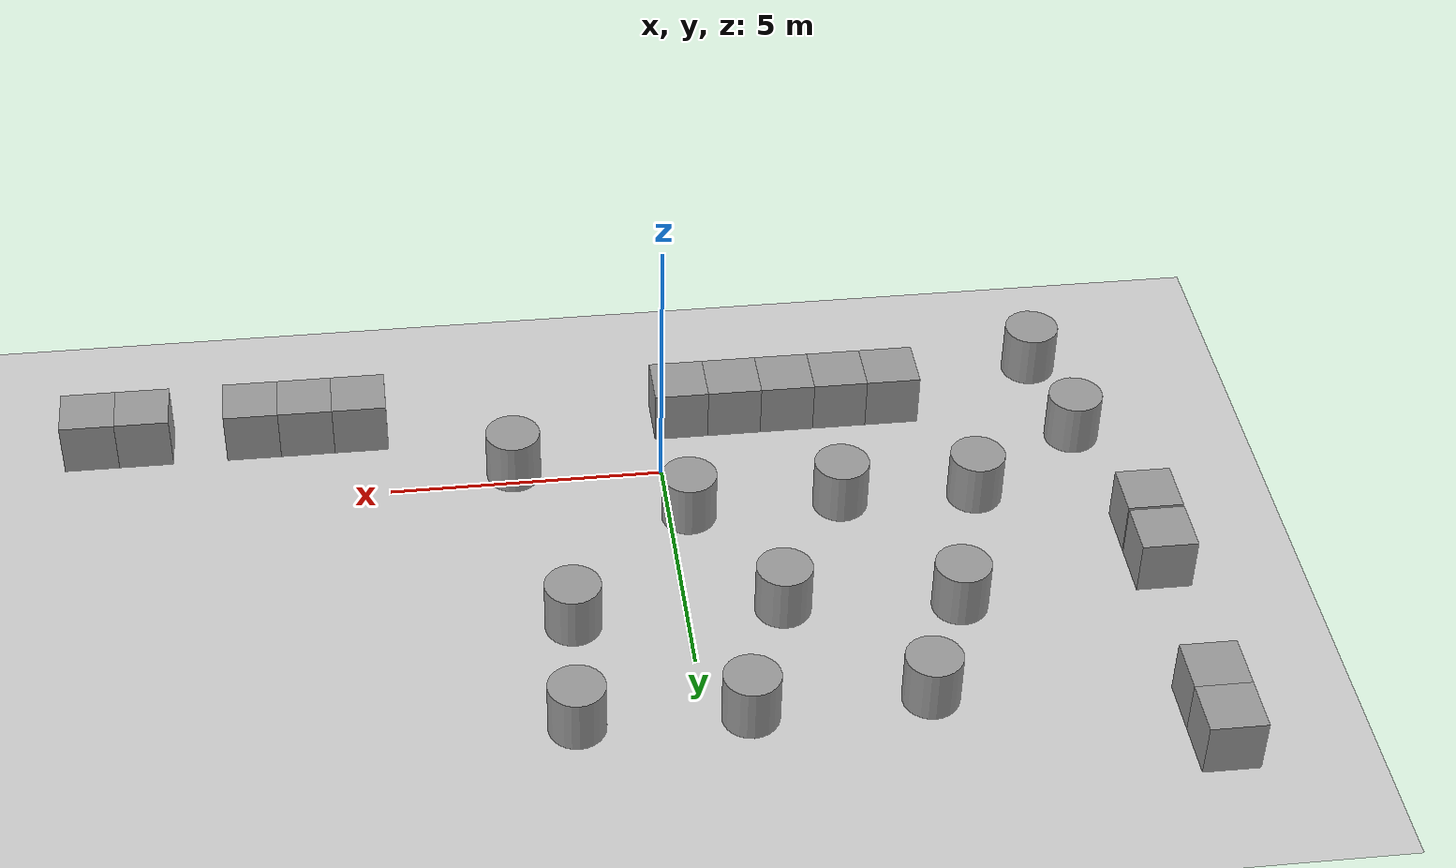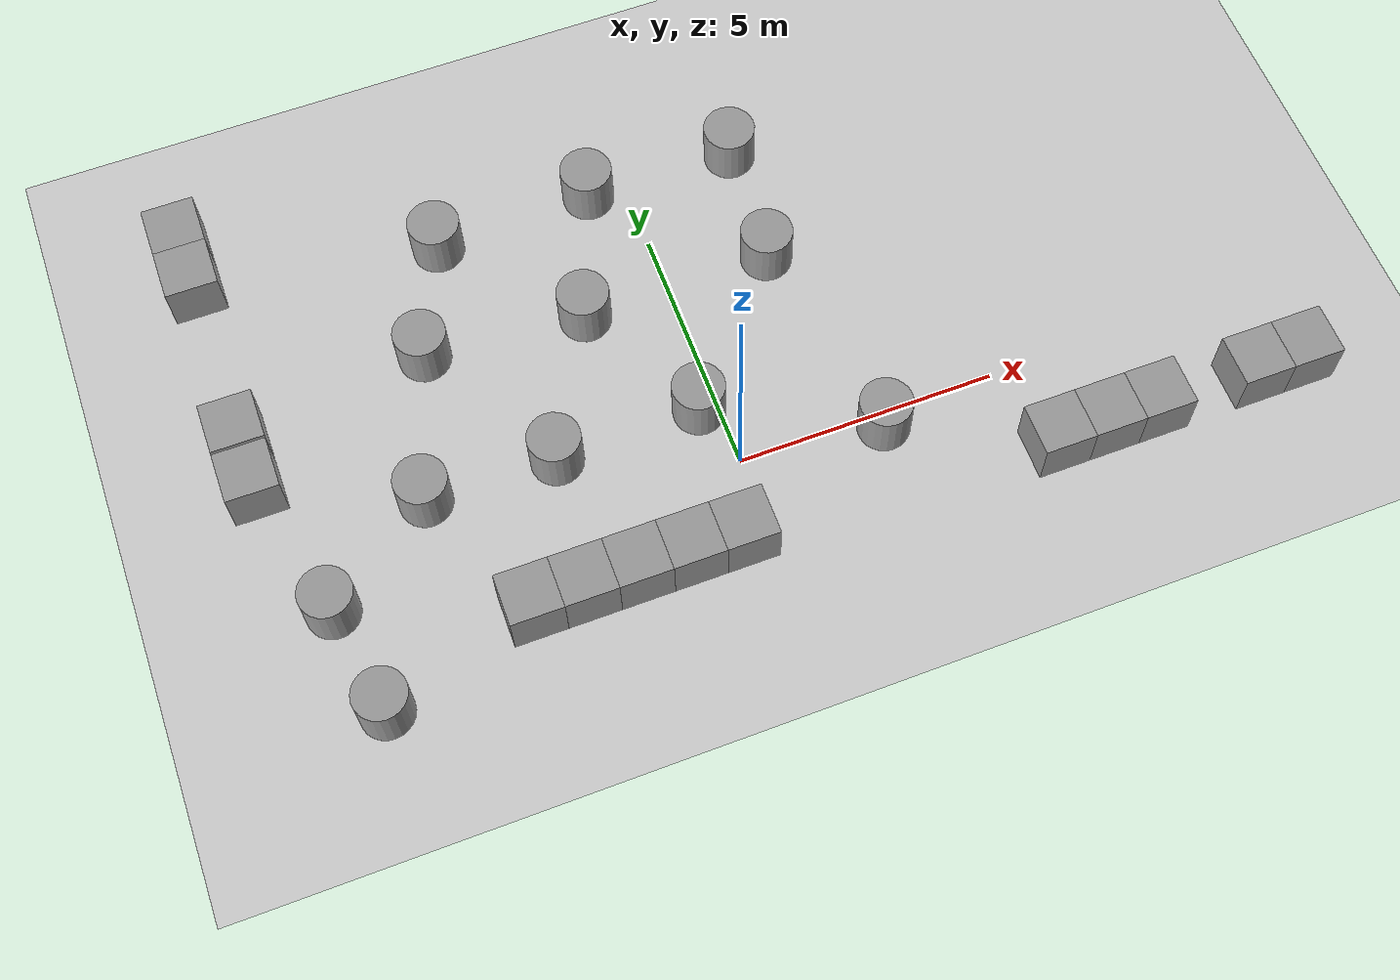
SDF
<sdf version="1.7">
 <world name="default">
  <model name="ground_plane">
   <static>1</static>
   <link name="link">
    <collision name="collision">
     <geometry><plane><normal>0 0 1</normal><size>100 100</size></plane></geometry>
     <surface><friction><ode><mu>100</mu><mu2>50</mu2></ode></friction></surface>
    </collision>
    <visual name="visual">
     <cast_shadows>0</cast_shadows>
     <geometry><plane><normal>0 0 1</normal><size>100 100</size></plane></geometry>
     <material>
      <script><uri>file://media/materials/scripts/gazebo.material</uri><name>Gazebo/Grey</name></script>
     </material>
    </visual>
   </link>
  </model>
  <model name="Simple_model">
   <link name="link_10">
    <inertial>
     <mass>100</mass>
     <inertia><ixx>16.6667</ixx><ixy>0</ixy><ixz>0</ixz><iyy>16.6667</iyy><iyz>0</iyz><izz>16.6667</izz></inertia>
    </inertial>
    <pose>-2.5 -3.5 0.5 0 -0 0</pose>
    <visual name="visual">
     <geometry><box><size>1 1 1</size></box></geometry>
     <material>
      <lighting>1</lighting>
      <script><uri>file://media/materials/scripts/gazebo.material</uri><name>Gazebo/Grey</name></script>
      <shader type="pixel"><normal_map>__default__</normal_map></shader>
      <ambient>0.3 0.3 0.3 1</ambient>
      <diffuse>0.7 0.7 0.7 1</diffuse>
      <specular>0.01 0.01 0.01 1</specular>
      <emissive>0 0 0 1</emissive>
     </material>
    </visual>
    <collision name="collision">
     <geometry><box><size>1 1 1</size></box></geometry>
     <surface>
      <friction>
       <ode><mu>1</mu><mu2>1</mu2><fdir1>0 0 0</fdir1><slip1>0</slip1><slip2>0</slip2></ode>
       <torsional>
        <coefficient>1</coefficient>
        <patch_radius>0</patch_radius>
        <surface_radius>0</surface_radius>
        <use_patch_radius>1</use_patch_radius>
        <ode><slip>0</slip></ode>
       </torsional>
      </friction>
      <bounce><restitution_coefficient>0</restitution_coefficient><threshold>1e+06</threshold></bounce>
      <contact>
       <collide_without_contact>0</collide_without_contact>
       <collide_without_contact_bitmask>1</collide_without_contact_bitmask>
       <collide_bitmask>1</collide_bitmask>
       <ode>
        <soft_cfm>0</soft_cfm>
        <soft_erp>0.2</soft_erp>
        <kp>1e+13</kp>
        <kd>1</kd>
        <max_vel>0.01</max_vel>
        <min_depth>0</min_depth>
       </ode>
       <bullet>
        <split_impulse>1</split_impulse>
        <split_impulse_penetration_threshold>-0.01</split_impulse_penetration_threshold>
        <soft_cfm>0</soft_cfm>
        <soft_erp>0.2</soft_erp>
        <kp>1e+13</kp>
        <kd>1</kd>
       </bullet>
      </contact>
     </surface>
    </collision>
   </link>
   <link name="link_11">
    <inertial>
     <mass>100</mass>
     <inertia><ixx>16.6667</ixx><ixy>0</ixy><ixz>0</ixz><iyy>16.6667</iyy><iyz>0</iyz><izz>16.6667</izz></inertia>
    </inertial>
    <pose>-3.5 -3.5 0.5 0 -0 0</pose>
    <visual name="visual">
     <geometry><box><size>1 1 1</size></box></geometry>
     <material>
      <lighting>1</lighting>
      <script><uri>file://media/materials/scripts/gazebo.material</uri><name>Gazebo/Grey</name></script>
      <shader type="pixel"><normal_map>__default__</normal_map></shader>
      <ambient>0.3 0.3 0.3 1</ambient>
      <diffuse>0.7 0.7 0.7 1</diffuse>
      <specular>0.01 0.01 0.01 1</specular>
      <emissive>0 0 0 1</emissive>
     </material>
    </visual>
    <collision name="collision">
     <geometry><box><size>1 1 1</size></box></geometry>
     <surface>
      <friction>
       <ode><mu>1</mu><mu2>1</mu2><fdir1>0 0 0</fdir1><slip1>0</slip1><slip2>0</slip2></ode>
       <torsional>
        <coefficient>1</coefficient>
        <patch_radius>0</patch_radius>
        <surface_radius>0</surface_radius>
        <use_patch_radius>1</use_patch_radius>
        <ode><slip>0</slip></ode>
       </torsional>
      </friction>
      <bounce><restitution_coefficient>0</restitution_coefficient><threshold>1e+06</threshold></bounce>
      <contact>
       <collide_without_contact>0</collide_without_contact>
       <collide_without_contact_bitmask>1</collide_without_contact_bitmask>
       <collide_bitmask>1</collide_bitmask>
       <ode>
        <soft_cfm>0</soft_cfm>
        <soft_erp>0.2</soft_erp>
        <kp>1e+13</kp>
        <kd>1</kd>
        <max_vel>0.01</max_vel>
        <min_depth>0</min_depth>
       </ode>
       <bullet>
        <split_impulse>1</split_impulse>
        <split_impulse_penetration_threshold>-0.01</split_impulse_penetration_threshold>
        <soft_cfm>0</soft_cfm>
        <soft_erp>0.2</soft_erp>
        <kp>1e+13</kp>
        <kd>1</kd>
       </bullet>
      </contact>
     </surface>
    </collision>
   </link>
   <link name="link_12">
    <inertial>
     <mass>100</mass>
     <inertia><ixx>16.6667</ixx><ixy>0</ixy><ixz>0</ixz><iyy>16.6667</iyy><iyz>0</iyz><izz>16.6667</izz></inertia>
    </inertial>
    <pose>-4.5 -3.5 0.5 0 -0 0</pose>
    <visual name="visual">
     <geometry><box><size>1 1 1</size></box></geometry>
     <material>
      <lighting>1</lighting>
      <script><uri>file://media/materials/scripts/gazebo.material</uri><name>Gazebo/Grey</name></script>
      <shader type="pixel"><normal_map>__default__</normal_map></shader>
      <ambient>0.3 0.3 0.3 1</ambient>
      <diffuse>0.7 0.7 0.7 1</diffuse>
      <specular>0.01 0.01 0.01 1</specular>
      <emissive>0 0 0 1</emissive>
     </material>
    </visual>
    <collision name="collision">
     <geometry><box><size>1 1 1</size></box></geometry>
     <surface>
      <friction>
       <ode><mu>1</mu><mu2>1</mu2><fdir1>0 0 0</fdir1><slip1>0</slip1><slip2>0</slip2></ode>
       <torsional>
        <coefficient>1</coefficient>
        <patch_radius>0</patch_radius>
        <surface_radius>0</surface_radius>
        <use_patch_radius>1</use_patch_radius>
        <ode><slip>0</slip></ode>
       </torsional>
      </friction>
      <bounce><restitution_coefficient>0</restitution_coefficient><threshold>1e+06</threshold></bounce>
      <contact>
       <collide_without_contact>0</collide_without_contact>
       <collide_without_contact_bitmask>1</collide_without_contact_bitmask>
       <collide_bitmask>1</collide_bitmask>
       <ode>
        <soft_cfm>0</soft_cfm>
        <soft_erp>0.2</soft_erp>
        <kp>1e+13</kp>
        <kd>1</kd>
        <max_vel>0.01</max_vel>
        <min_depth>0</min_depth>
       </ode>
       <bullet>
        <split_impulse>1</split_impulse>
        <split_impulse_penetration_threshold>-0.01</split_impulse_penetration_threshold>
        <soft_cfm>0</soft_cfm>
        <soft_erp>0.2</soft_erp>
        <kp>1e+13</kp>
        <kd>1</kd>
       </bullet>
      </contact>
     </surface>
    </collision>
   </link>
   <link name="link_13">
    <inertial>
     <mass>100</mass>
     <inertia><ixx>16.6667</ixx><ixy>0</ixy><ixz>0</ixz><iyy>16.6667</iyy><iyz>0</iyz><izz>16.6667</izz></inertia>
    </inertial>
    <pose>5.5 -3.75 0.5 0 -0 0</pose>
    <visual name="visual">
     <geometry><box><size>1 1 1</size></box></geometry>
     <material>
      <lighting>1</lighting>
      <script><uri>file://media/materials/scripts/gazebo.material</uri><name>Gazebo/Grey</name></script>
      <shader type="pixel"><normal_map>__default__</normal_map></shader>
      <ambient>0.3 0.3 0.3 1</ambient>
      <diffuse>0.7 0.7 0.7 1</diffuse>
      <specular>0.01 0.01 0.01 1</specular>
      <emissive>0 0 0 1</emissive>
     </material>
    </visual>
    <collision name="collision">
     <geometry><box><size>1 1 1</size></box></geometry>
     <surface>
      <friction>
       <ode><mu>1</mu><mu2>1</mu2><fdir1>0 0 0</fdir1><slip1>0</slip1><slip2>0</slip2></ode>
       <torsional>
        <coefficient>1</coefficient>
        <patch_radius>0</patch_radius>
        <surface_radius>0</surface_radius>
        <use_patch_radius>1</use_patch_radius>
        <ode><slip>0</slip></ode>
       </torsional>
      </friction>
      <bounce><restitution_coefficient>0</restitution_coefficient><threshold>1e+06</threshold></bounce>
      <contact>
       <collide_without_contact>0</collide_without_contact>
       <collide_without_contact_bitmask>1</collide_without_contact_bitmask>
       <collide_bitmask>1</collide_bitmask>
       <ode>
        <soft_cfm>0</soft_cfm>
        <soft_erp>0.2</soft_erp>
        <kp>1e+13</kp>
        <kd>1</kd>
        <max_vel>0.01</max_vel>
        <min_depth>0</min_depth>
       </ode>
       <bullet>
        <split_impulse>1</split_impulse>
        <split_impulse_penetration_threshold>-0.01</split_impulse_penetration_threshold>
        <soft_cfm>0</soft_cfm>
        <soft_erp>0.2</soft_erp>
        <kp>1e+13</kp>
        <kd>1</kd>
       </bullet>
      </contact>
     </surface>
    </collision>
   </link>
   <link name="link_13_clone">
    <inertial>
     <mass>100</mass>
     <inertia><ixx>16.6667</ixx><ixy>0</ixy><ixz>0</ixz><iyy>16.6667</iyy><iyz>0</iyz><izz>16.6667</izz></inertia>
    </inertial>
    <pose>6.5 -3.75 0.5 0 -0 0</pose>
    <visual name="visual">
     <geometry><box><size>1 1 1</size></box></geometry>
     <material>
      <lighting>1</lighting>
      <script><uri>file://media/materials/scripts/gazebo.material</uri><name>Gazebo/Grey</name></script>
      <shader type="pixel"><normal_map>__default__</normal_map></shader>
      <ambient>0.3 0.3 0.3 1</ambient>
      <diffuse>0.7 0.7 0.7 1</diffuse>
      <specular>0.01 0.01 0.01 1</specular>
      <emissive>0 0 0 1</emissive>
     </material>
    </visual>
    <collision name="collision">
     <geometry><box><size>1 1 1</size></box></geometry>
     <surface>
      <friction>
       <ode><mu>1</mu><mu2>1</mu2><fdir1>0 0 0</fdir1><slip1>0</slip1><slip2>0</slip2></ode>
       <torsional>
        <coefficient>1</coefficient>
        <patch_radius>0</patch_radius>
        <surface_radius>0</surface_radius>
        <use_patch_radius>1</use_patch_radius>
        <ode><slip>0</slip></ode>
       </torsional>
      </friction>
      <bounce><restitution_coefficient>0</restitution_coefficient><threshold>1e+06</threshold></bounce>
      <contact>
       <collide_without_contact>0</collide_without_contact>
       <collide_without_contact_bitmask>1</collide_without_contact_bitmask>
       <collide_bitmask>1</collide_bitmask>
       <ode>
        <soft_cfm>0</soft_cfm>
        <soft_erp>0.2</soft_erp>
        <kp>1e+13</kp>
        <kd>1</kd>
        <max_vel>0.01</max_vel>
        <min_depth>0</min_depth>
       </ode>
       <bullet>
        <split_impulse>1</split_impulse>
        <split_impulse_penetration_threshold>-0.01</split_impulse_penetration_threshold>
        <soft_cfm>0</soft_cfm>
        <soft_erp>0.2</soft_erp>
        <kp>1e+13</kp>
        <kd>1</kd>
       </bullet>
      </contact>
     </surface>
    </collision>
   </link>
   <link name="link_13_clone_0">
    <inertial>
     <mass>100</mass>
     <inertia><ixx>16.6667</ixx><ixy>0</ixy><ixz>0</ixz><iyy>16.6667</iyy><iyz>0</iyz><izz>16.6667</izz></inertia>
    </inertial>
    <pose>7.5 -3.75 0.5 0 -0 0</pose>
    <visual name="visual">
     <geometry><box><size>1 1 1</size></box></geometry>
     <material>
      <lighting>1</lighting>
      <script><uri>file://media/materials/scripts/gazebo.material</uri><name>Gazebo/Grey</name></script>
      <shader type="pixel"><normal_map>__default__</normal_map></shader>
      <ambient>0.3 0.3 0.3 1</ambient>
      <diffuse>0.7 0.7 0.7 1</diffuse>
      <specular>0.01 0.01 0.01 1</specular>
      <emissive>0 0 0 1</emissive>
     </material>
    </visual>
    <collision name="collision">
     <geometry><box><size>1 1 1</size></box></geometry>
     <surface>
      <friction>
       <ode><mu>1</mu><mu2>1</mu2><fdir1>0 0 0</fdir1><slip1>0</slip1><slip2>0</slip2></ode>
       <torsional>
        <coefficient>1</coefficient>
        <patch_radius>0</patch_radius>
        <surface_radius>0</surface_radius>
        <use_patch_radius>1</use_patch_radius>
        <ode><slip>0</slip></ode>
       </torsional>
      </friction>
      <bounce><restitution_coefficient>0</restitution_coefficient><threshold>1e+06</threshold></bounce>
      <contact>
       <collide_without_contact>0</collide_without_contact>
       <collide_without_contact_bitmask>1</collide_without_contact_bitmask>
       <collide_bitmask>1</collide_bitmask>
       <ode>
        <soft_cfm>0</soft_cfm>
        <soft_erp>0.2</soft_erp>
        <kp>1e+13</kp>
        <kd>1</kd>
        <max_vel>0.01</max_vel>
        <min_depth>0</min_depth>
       </ode>
       <bullet>
        <split_impulse>1</split_impulse>
        <split_impulse_penetration_threshold>-0.01</split_impulse_penetration_threshold>
        <soft_cfm>0</soft_cfm>
        <soft_erp>0.2</soft_erp>
        <kp>1e+13</kp>
        <kd>1</kd>
       </bullet>
      </contact>
     </surface>
    </collision>
   </link>
   <link name="link_13_clone_1">
    <inertial>
     <mass>100</mass>
     <inertia><ixx>16.6667</ixx><ixy>0</ixy><ixz>0</ixz><iyy>16.6667</iyy><iyz>0</iyz><izz>16.6667</izz></inertia>
    </inertial>
    <pose>9.5 -3.75 0.5 0 -0 0</pose>
    <visual name="visual">
     <geometry><box><size>1 1 1</size></box></geometry>
     <material>
      <lighting>1</lighting>
      <script><uri>file://media/materials/scripts/gazebo.material</uri><name>Gazebo/Grey</name></script>
      <shader type="pixel"><normal_map>__default__</normal_map></shader>
      <ambient>0.3 0.3 0.3 1</ambient>
      <diffuse>0.7 0.7 0.7 1</diffuse>
      <specular>0.01 0.01 0.01 1</specular>
      <emissive>0 0 0 1</emissive>
     </material>
    </visual>
    <collision name="collision">
     <geometry><box><size>1 1 1</size></box></geometry>
     <surface>
      <friction>
       <ode><mu>1</mu><mu2>1</mu2><fdir1>0 0 0</fdir1><slip1>0</slip1><slip2>0</slip2></ode>
       <torsional>
        <coefficient>1</coefficient>
        <patch_radius>0</patch_radius>
        <surface_radius>0</surface_radius>
        <use_patch_radius>1</use_patch_radius>
        <ode><slip>0</slip></ode>
       </torsional>
      </friction>
      <bounce><restitution_coefficient>0</restitution_coefficient><threshold>1e+06</threshold></bounce>
      <contact>
       <collide_without_contact>0</collide_without_contact>
       <collide_without_contact_bitmask>1</collide_without_contact_bitmask>
       <collide_bitmask>1</collide_bitmask>
       <ode>
        <soft_cfm>0</soft_cfm>
        <soft_erp>0.2</soft_erp>
        <kp>1e+13</kp>
        <kd>1</kd>
        <max_vel>0.01</max_vel>
        <min_depth>0</min_depth>
       </ode>
       <bullet>
        <split_impulse>1</split_impulse>
        <split_impulse_penetration_threshold>-0.01</split_impulse_penetration_threshold>
        <soft_cfm>0</soft_cfm>
        <soft_erp>0.2</soft_erp>
        <kp>1e+13</kp>
        <kd>1</kd>
       </bullet>
      </contact>
     </surface>
    </collision>
   </link>
   <link name="link_13_clone_2">
    <inertial>
     <mass>100</mass>
     <inertia><ixx>16.6667</ixx><ixy>0</ixy><ixz>0</ixz><iyy>16.6667</iyy><iyz>0</iyz><izz>16.6667</izz></inertia>
    </inertial>
    <pose>10.5 -3.75 0.5 0 -0 0</pose>
    <visual name="visual">
     <geometry><box><size>1 1 1</size></box></geometry>
     <material>
      <lighting>1</lighting>
      <script><uri>file://media/materials/scripts/gazebo.material</uri><name>Gazebo/Grey</name></script>
      <shader type="pixel"><normal_map>__default__</normal_map></shader>
      <ambient>0.3 0.3 0.3 1</ambient>
      <diffuse>0.7 0.7 0.7 1</diffuse>
      <specular>0.01 0.01 0.01 1</specular>
      <emissive>0 0 0 1</emissive>
     </material>
    </visual>
    <collision name="collision">
     <geometry><box><size>1 1 1</size></box></geometry>
     <surface>
      <friction>
       <ode><mu>1</mu><mu2>1</mu2><fdir1>0 0 0</fdir1><slip1>0</slip1><slip2>0</slip2></ode>
       <torsional>
        <coefficient>1</coefficient>
        <patch_radius>0</patch_radius>
        <surface_radius>0</surface_radius>
        <use_patch_radius>1</use_patch_radius>
        <ode><slip>0</slip></ode>
       </torsional>
      </friction>
      <bounce><restitution_coefficient>0</restitution_coefficient><threshold>1e+06</threshold></bounce>
      <contact>
       <collide_without_contact>0</collide_without_contact>
       <collide_without_contact_bitmask>1</collide_without_contact_bitmask>
       <collide_bitmask>1</collide_bitmask>
       <ode>
        <soft_cfm>0</soft_cfm>
        <soft_erp>0.2</soft_erp>
        <kp>1e+13</kp>
        <kd>1</kd>
        <max_vel>0.01</max_vel>
        <min_depth>0</min_depth>
       </ode>
       <bullet>
        <split_impulse>1</split_impulse>
        <split_impulse_penetration_threshold>-0.01</split_impulse_penetration_threshold>
        <soft_cfm>0</soft_cfm>
        <soft_erp>0.2</soft_erp>
        <kp>1e+13</kp>
        <kd>1</kd>
       </bullet>
      </contact>
     </surface>
    </collision>
   </link>
   <link name="link_15">
    <inertial>
     <mass>1</mass>
     <inertia><ixx>0.145833</ixx><ixy>0</ixy><ixz>0</ixz><iyy>0.145833</iyy><iyz>0</iyz><izz>0.125</izz></inertia>
    </inertial>
    <pose>2.0038 1.9081 0.5 0 -0 0</pose>
    <visual name="visual">
     <geometry><cylinder><radius>0.5</radius><length>1</length></cylinder></geometry>
     <material>
      <lighting>1</lighting>
      <script><uri>file://media/materials/scripts/gazebo.material</uri><name>Gazebo/Grey</name></script>
      <shader type="pixel"/>
     </material>
    </visual>
    <collision name="collision">
     <geometry><cylinder><radius>0.5</radius><length>1</length></cylinder></geometry>
     <surface>
      <friction>
       <ode><mu>1</mu><mu2>1</mu2><fdir1>0 0 0</fdir1><slip1>0</slip1><slip2>0</slip2></ode>
       <torsional>
        <coefficient>1</coefficient>
        <patch_radius>0</patch_radius>
        <surface_radius>0</surface_radius>
        <use_patch_radius>1</use_patch_radius>
        <ode><slip>0</slip></ode>
       </torsional>
      </friction>
      <bounce><restitution_coefficient>0</restitution_coefficient><threshold>1e+06</threshold></bounce>
      <contact>
       <collide_without_contact>0</collide_without_contact>
       <collide_without_contact_bitmask>1</collide_without_contact_bitmask>
       <collide_bitmask>1</collide_bitmask>
       <ode>
        <soft_cfm>0</soft_cfm>
        <soft_erp>0.2</soft_erp>
        <kp>1e+13</kp>
        <kd>1</kd>
        <max_vel>0.01</max_vel>
        <min_depth>0</min_depth>
       </ode>
       <bullet>
        <split_impulse>1</split_impulse>
        <split_impulse_penetration_threshold>-0.01</split_impulse_penetration_threshold>
        <soft_cfm>0</soft_cfm>
        <soft_erp>0.2</soft_erp>
        <kp>1e+13</kp>
        <kd>1</kd>
       </bullet>
      </contact>
     </surface>
    </collision>
   </link>
   <link name="link_16">
    <inertial>
     <mass>102.337</mass>
     <inertia><ixx>14.9242</ixx><ixy>0</ixy><ixz>0</ixz><iyy>14.9242</iyy><iyz>0</iyz><izz>12.7922</izz></inertia>
    </inertial>
    <pose>2.16965 4.37261 0.5 0 -0 0</pose>
    <visual name="visual">
     <geometry><cylinder><radius>0.5</radius><length>1</length></cylinder></geometry>
     <material>
      <lighting>1</lighting>
      <script><uri>file://media/materials/scripts/gazebo.material</uri><name>Gazebo/Grey</name></script>
      <shader type="pixel"><normal_map>__default__</normal_map></shader>
     </material>
    </visual>
    <collision name="collision">
     <geometry><cylinder><radius>0.5</radius><length>1</length></cylinder></geometry>
     <surface>
      <friction>
       <ode><mu>1</mu><mu2>1</mu2><fdir1>0 0 0</fdir1><slip1>0</slip1><slip2>0</slip2></ode>
       <torsional>
        <coefficient>1</coefficient>
        <patch_radius>0</patch_radius>
        <surface_radius>0</surface_radius>
        <use_patch_radius>1</use_patch_radius>
        <ode><slip>0</slip></ode>
       </torsional>
      </friction>
      <bounce><restitution_coefficient>0</restitution_coefficient><threshold>1e+06</threshold></bounce>
      <contact>
       <collide_without_contact>0</collide_without_contact>
       <collide_without_contact_bitmask>1</collide_without_contact_bitmask>
       <collide_bitmask>1</collide_bitmask>
       <ode>
        <soft_cfm>0</soft_cfm>
        <soft_erp>0.2</soft_erp>
        <kp>1e+13</kp>
        <kd>1</kd>
        <max_vel>0.01</max_vel>
        <min_depth>0</min_depth>
       </ode>
       <bullet>
        <split_impulse>1</split_impulse>
        <split_impulse_penetration_threshold>-0.01</split_impulse_penetration_threshold>
        <soft_cfm>0</soft_cfm>
        <soft_erp>0.2</soft_erp>
        <kp>1e+13</kp>
        <kd>1</kd>
       </bullet>
      </contact>
     </surface>
    </collision>
   </link>
   <link name="link_17">
    <inertial>
     <mass>102.337</mass>
     <inertia><ixx>14.9242</ixx><ixy>0</ixy><ixz>0</ixz><iyy>14.9242</iyy><iyz>0</iyz><izz>12.7922</izz></inertia>
    </inertial>
    <pose>-4.80249 2.10866 0.5 0 -0 0</pose>
    <visual name="visual">
     <geometry><cylinder><radius>0.5</radius><length>1</length></cylinder></geometry>
     <material>
      <lighting>1</lighting>
      <script><uri>file://media/materials/scripts/gazebo.material</uri><name>Gazebo/Grey</name></script>
      <shader type="pixel"><normal_map>__default__</normal_map></shader>
     </material>
    </visual>
    <collision name="collision">
     <geometry><cylinder><radius>0.5</radius><length>1</length></cylinder></geometry>
     <surface>
      <friction>
       <ode><mu>1</mu><mu2>1</mu2><fdir1>0 0 0</fdir1><slip1>0</slip1><slip2>0</slip2></ode>
       <torsional>
        <coefficient>1</coefficient>
        <patch_radius>0</patch_radius>
        <surface_radius>0</surface_radius>
        <use_patch_radius>1</use_patch_radius>
        <ode><slip>0</slip></ode>
       </torsional>
      </friction>
      <bounce><restitution_coefficient>0</restitution_coefficient><threshold>1e+06</threshold></bounce>
      <contact>
       <collide_without_contact>0</collide_without_contact>
       <collide_without_contact_bitmask>1</collide_without_contact_bitmask>
       <collide_bitmask>1</collide_bitmask>
       <ode>
        <soft_cfm>0</soft_cfm>
        <soft_erp>0.2</soft_erp>
        <kp>1e+13</kp>
        <kd>1</kd>
        <max_vel>0.01</max_vel>
        <min_depth>0</min_depth>
       </ode>
       <bullet>
        <split_impulse>1</split_impulse>
        <split_impulse_penetration_threshold>-0.01</split_impulse_penetration_threshold>
        <soft_cfm>0</soft_cfm>
        <soft_erp>0.2</soft_erp>
        <kp>1e+13</kp>
        <kd>1</kd>
       </bullet>
      </contact>
     </surface>
    </collision>
   </link>
   <link name="link_18">
    <inertial>
     <mass>102.337</mass>
     <inertia><ixx>14.9242</ixx><ixy>0</ixy><ixz>0</ixz><iyy>14.9242</iyy><iyz>0</iyz><izz>12.7922</izz></inertia>
    </inertial>
    <pose>-3.8631 4.32135 0.5 0 -0 0</pose>
    <visual name="visual">
     <geometry><cylinder><radius>0.5</radius><length>1</length></cylinder></geometry>
     <material>
      <lighting>1</lighting>
      <script><uri>file://media/materials/scripts/gazebo.material</uri><name>Gazebo/Grey</name></script>
      <shader type="pixel"><normal_map>__default__</normal_map></shader>
     </material>
    </visual>
    <collision name="collision">
     <geometry><cylinder><radius>0.5</radius><length>1</length></cylinder></geometry>
     <surface>
      <friction>
       <ode><mu>1</mu><mu2>1</mu2><fdir1>0 0 0</fdir1><slip1>0</slip1><slip2>0</slip2></ode>
       <torsional>
        <coefficient>1</coefficient>
        <patch_radius>0</patch_radius>
        <surface_radius>0</surface_radius>
        <use_patch_radius>1</use_patch_radius>
        <ode><slip>0</slip></ode>
       </torsional>
      </friction>
      <bounce><restitution_coefficient>0</restitution_coefficient><threshold>1e+06</threshold></bounce>
      <contact>
       <collide_without_contact>0</collide_without_contact>
       <collide_without_contact_bitmask>1</collide_without_contact_bitmask>
       <collide_bitmask>1</collide_bitmask>
       <ode>
        <soft_cfm>0</soft_cfm>
        <soft_erp>0.2</soft_erp>
        <kp>1e+13</kp>
        <kd>1</kd>
        <max_vel>0.01</max_vel>
        <min_depth>0</min_depth>
       </ode>
       <bullet>
        <split_impulse>1</split_impulse>
        <split_impulse_penetration_threshold>-0.01</split_impulse_penetration_threshold>
        <soft_cfm>0</soft_cfm>
        <soft_erp>0.2</soft_erp>
        <kp>1e+13</kp>
        <kd>1</kd>
       </bullet>
      </contact>
     </surface>
    </collision>
   </link>
   <link name="link_19">
    <inertial>
     <mass>102.337</mass>
     <inertia><ixx>14.9242</ixx><ixy>0</ixy><ixz>0</ixz><iyy>14.9242</iyy><iyz>0</iyz><izz>12.7922</izz></inertia>
    </inertial>
    <pose>-1.69859 1.85825 0.5 0 -0 0</pose>
    <visual name="visual">
     <geometry><cylinder><radius>0.5</radius><length>1</length></cylinder></geometry>
     <material>
      <lighting>1</lighting>
      <script><uri>file://media/materials/scripts/gazebo.material</uri><name>Gazebo/Grey</name></script>
      <shader type="pixel"><normal_map>__default__</normal_map></shader>
     </material>
    </visual>
    <collision name="collision">
     <geometry><cylinder><radius>0.5</radius><length>1</length></cylinder></geometry>
     <surface>
      <friction>
       <ode><mu>1</mu><mu2>1</mu2><fdir1>0 0 0</fdir1><slip1>0</slip1><slip2>0</slip2></ode>
       <torsional>
        <coefficient>1</coefficient>
        <patch_radius>0</patch_radius>
        <surface_radius>0</surface_radius>
        <use_patch_radius>1</use_patch_radius>
        <ode><slip>0</slip></ode>
       </torsional>
      </friction>
      <bounce><restitution_coefficient>0</restitution_coefficient><threshold>1e+06</threshold></bounce>
      <contact>
       <collide_without_contact>0</collide_without_contact>
       <collide_without_contact_bitmask>1</collide_without_contact_bitmask>
       <collide_bitmask>1</collide_bitmask>
       <ode>
        <soft_cfm>0</soft_cfm>
        <soft_erp>0.2</soft_erp>
        <kp>1e+13</kp>
        <kd>1</kd>
        <max_vel>0.01</max_vel>
        <min_depth>0</min_depth>
       </ode>
       <bullet>
        <split_impulse>1</split_impulse>
        <split_impulse_penetration_threshold>-0.01</split_impulse_penetration_threshold>
        <soft_cfm>0</soft_cfm>
        <soft_erp>0.2</soft_erp>
        <kp>1e+13</kp>
        <kd>1</kd>
       </bullet>
      </contact>
     </surface>
    </collision>
   </link>
   <link name="link_20">
    <inertial>
     <mass>102.337</mass>
     <inertia><ixx>14.9242</ixx><ixy>0</ixy><ixz>0</ixz><iyy>14.9242</iyy><iyz>0</iyz><izz>12.7922</izz></inertia>
    </inertial>
    <pose>-0.761838 4.43692 0.5 0 -0 0</pose>
    <visual name="visual">
     <geometry><cylinder><radius>0.5</radius><length>1</length></cylinder></geometry>
     <material>
      <lighting>1</lighting>
      <script><uri>file://media/materials/scripts/gazebo.material</uri><name>Gazebo/Grey</name></script>
      <shader type="pixel"><normal_map>__default__</normal_map></shader>
     </material>
    </visual>
    <collision name="collision">
     <geometry><cylinder><radius>0.5</radius><length>1</length></cylinder></geometry>
     <surface>
      <friction>
       <ode><mu>1</mu><mu2>1</mu2><fdir1>0 0 0</fdir1><slip1>0</slip1><slip2>0</slip2></ode>
       <torsional>
        <coefficient>1</coefficient>
        <patch_radius>0</patch_radius>
        <surface_radius>0</surface_radius>
        <use_patch_radius>1</use_patch_radius>
        <ode><slip>0</slip></ode>
       </torsional>
      </friction>
      <bounce><restitution_coefficient>0</restitution_coefficient><threshold>1e+06</threshold></bounce>
      <contact>
       <collide_without_contact>0</collide_without_contact>
       <collide_without_contact_bitmask>1</collide_without_contact_bitmask>
       <collide_bitmask>1</collide_bitmask>
       <ode>
        <soft_cfm>0</soft_cfm>
        <soft_erp>0.2</soft_erp>
        <kp>1e+13</kp>
        <kd>1</kd>
        <max_vel>0.01</max_vel>
        <min_depth>0</min_depth>
       </ode>
       <bullet>
        <split_impulse>1</split_impulse>
        <split_impulse_penetration_threshold>-0.01</split_impulse_penetration_threshold>
        <soft_cfm>0</soft_cfm>
        <soft_erp>0.2</soft_erp>
        <kp>1e+13</kp>
        <kd>1</kd>
       </bullet>
      </contact>
     </surface>
    </collision>
   </link>
   <link name="link_21">
    <inertial>
     <mass>78.7754</mass>
     <inertia><ixx>11.4881</ixx><ixy>0</ixy><ixz>0</ixz><iyy>11.4881</iyy><iyz>0</iyz><izz>9.84693</izz></inertia>
    </inertial>
    <pose>2.71853 -2.27303 0.5 0 -0 0</pose>
    <visual name="visual">
     <geometry><cylinder><radius>0.5</radius><length>1</length></cylinder></geometry>
     <material>
      <lighting>1</lighting>
      <script><uri>file://media/materials/scripts/gazebo.material</uri><name>Gazebo/Grey</name></script>
      <shader type="pixel"><normal_map>__default__</normal_map></shader>
     </material>
    </visual>
    <collision name="collision">
     <geometry><cylinder><radius>0.5</radius><length>1</length></cylinder></geometry>
     <surface>
      <friction>
       <ode><mu>1</mu><mu2>1</mu2><fdir1>0 0 0</fdir1><slip1>0</slip1><slip2>0</slip2></ode>
       <torsional>
        <coefficient>1</coefficient>
        <patch_radius>0</patch_radius>
        <surface_radius>0</surface_radius>
        <use_patch_radius>1</use_patch_radius>
        <ode><slip>0</slip></ode>
       </torsional>
      </friction>
      <bounce><restitution_coefficient>0</restitution_coefficient><threshold>1e+06</threshold></bounce>
      <contact>
       <collide_without_contact>0</collide_without_contact>
       <collide_without_contact_bitmask>1</collide_without_contact_bitmask>
       <collide_bitmask>1</collide_bitmask>
       <ode>
        <soft_cfm>0</soft_cfm>
        <soft_erp>0.2</soft_erp>
        <kp>1e+13</kp>
        <kd>1</kd>
        <max_vel>0.01</max_vel>
        <min_depth>0</min_depth>
       </ode>
       <bullet>
        <split_impulse>1</split_impulse>
        <split_impulse_penetration_threshold>-0.01</split_impulse_penetration_threshold>
        <soft_cfm>0</soft_cfm>
        <soft_erp>0.2</soft_erp>
        <kp>1e+13</kp>
        <kd>1</kd>
       </bullet>
      </contact>
     </surface>
    </collision>
   </link>
   <link name="link_22">
    <inertial>
     <mass>100</mass>
     <inertia><ixx>16.6667</ixx><ixy>0</ixy><ixz>0</ixz><iyy>16.6667</iyy><iyz>0</iyz><izz>16.6667</izz></inertia>
    </inertial>
    <pose>-8.5 6 0.5 0 -0 0</pose>
    <visual name="visual">
     <geometry><box><size>1 1 1</size></box></geometry>
     <material>
      <lighting>1</lighting>
      <script><uri>file://media/materials/scripts/gazebo.material</uri><name>Gazebo/Grey</name></script>
      <shader type="pixel"><normal_map>__default__</normal_map></shader>
      <ambient>0.3 0.3 0.3 1</ambient>
      <diffuse>0.7 0.7 0.7 1</diffuse>
      <specular>0.01 0.01 0.01 1</specular>
      <emissive>0 0 0 1</emissive>
     </material>
    </visual>
    <collision name="collision">
     <geometry><box><size>1 1 1</size></box></geometry>
     <surface>
      <friction>
       <ode><mu>1</mu><mu2>1</mu2><fdir1>0 0 0</fdir1><slip1>0</slip1><slip2>0</slip2></ode>
       <torsional>
        <coefficient>1</coefficient>
        <patch_radius>0</patch_radius>
        <surface_radius>0</surface_radius>
        <use_patch_radius>1</use_patch_radius>
        <ode><slip>0</slip></ode>
       </torsional>
      </friction>
      <bounce><restitution_coefficient>0</restitution_coefficient><threshold>1e+06</threshold></bounce>
      <contact>
       <collide_without_contact>0</collide_without_contact>
       <collide_without_contact_bitmask>1</collide_without_contact_bitmask>
       <collide_bitmask>1</collide_bitmask>
       <ode>
        <soft_cfm>0</soft_cfm>
        <soft_erp>0.2</soft_erp>
        <kp>1e+13</kp>
        <kd>1</kd>
        <max_vel>0.01</max_vel>
        <min_depth>0</min_depth>
       </ode>
       <bullet>
        <split_impulse>1</split_impulse>
        <split_impulse_penetration_threshold>-0.01</split_impulse_penetration_threshold>
        <soft_cfm>0</soft_cfm>
        <soft_erp>0.2</soft_erp>
        <kp>1e+13</kp>
        <kd>1</kd>
       </bullet>
      </contact>
     </surface>
    </collision>
   </link>
   <link name="link_23">
    <inertial>
     <mass>100</mass>
     <inertia><ixx>16.6667</ixx><ixy>0</ixy><ixz>0</ixz><iyy>16.6667</iyy><iyz>0</iyz><izz>16.6667</izz></inertia>
    </inertial>
    <pose>-8.5 5 0.5 0 -0 0</pose>
    <visual name="visual">
     <geometry><box><size>1 1 1</size></box></geometry>
     <material>
      <lighting>1</lighting>
      <script><uri>file://media/materials/scripts/gazebo.material</uri><name>Gazebo/Grey</name></script>
      <shader type="pixel"><normal_map>__default__</normal_map></shader>
      <ambient>0.3 0.3 0.3 1</ambient>
      <diffuse>0.7 0.7 0.7 1</diffuse>
      <specular>0.01 0.01 0.01 1</specular>
      <emissive>0 0 0 1</emissive>
     </material>
    </visual>
    <collision name="collision">
     <geometry><box><size>1 1 1</size></box></geometry>
     <surface>
      <friction>
       <ode><mu>1</mu><mu2>1</mu2><fdir1>0 0 0</fdir1><slip1>0</slip1><slip2>0</slip2></ode>
       <torsional>
        <coefficient>1</coefficient>
        <patch_radius>0</patch_radius>
        <surface_radius>0</surface_radius>
        <use_patch_radius>1</use_patch_radius>
        <ode><slip>0</slip></ode>
       </torsional>
      </friction>
      <bounce><restitution_coefficient>0</restitution_coefficient><threshold>1e+06</threshold></bounce>
      <contact>
       <collide_without_contact>0</collide_without_contact>
       <collide_without_contact_bitmask>1</collide_without_contact_bitmask>
       <collide_bitmask>1</collide_bitmask>
       <ode>
        <soft_cfm>0</soft_cfm>
        <soft_erp>0.2</soft_erp>
        <kp>1e+13</kp>
        <kd>1</kd>
        <max_vel>0.01</max_vel>
        <min_depth>0</min_depth>
       </ode>
       <bullet>
        <split_impulse>1</split_impulse>
        <split_impulse_penetration_threshold>-0.01</split_impulse_penetration_threshold>
        <soft_cfm>0</soft_cfm>
        <soft_erp>0.2</soft_erp>
        <kp>1e+13</kp>
        <kd>1</kd>
       </bullet>
      </contact>
     </surface>
    </collision>
   </link>
   <link name="link_26">
    <inertial>
     <mass>100</mass>
     <inertia><ixx>16.6667</ixx><ixy>0</ixy><ixz>0</ixz><iyy>16.6667</iyy><iyz>0</iyz><izz>16.6667</izz></inertia>
    </inertial>
    <pose>-8.5 1.55 0.5 0 -0 0</pose>
    <visual name="visual">
     <geometry><box><size>1 1 1</size></box></geometry>
     <material>
      <lighting>1</lighting>
      <script><uri>file://media/materials/scripts/gazebo.material</uri><name>Gazebo/Grey</name></script>
      <shader type="pixel"><normal_map>__default__</normal_map></shader>
      <ambient>0.3 0.3 0.3 1</ambient>
      <diffuse>0.7 0.7 0.7 1</diffuse>
      <specular>0.01 0.01 0.01 1</specular>
      <emissive>0 0 0 1</emissive>
     </material>
    </visual>
    <collision name="collision">
     <geometry><box><size>1 1 1</size></box></geometry>
     <surface>
      <friction>
       <ode><mu>1</mu><mu2>1</mu2><fdir1>0 0 0</fdir1><slip1>0</slip1><slip2>0</slip2></ode>
       <torsional>
        <coefficient>1</coefficient>
        <patch_radius>0</patch_radius>
        <surface_radius>0</surface_radius>
        <use_patch_radius>1</use_patch_radius>
        <ode><slip>0</slip></ode>
       </torsional>
      </friction>
      <bounce><restitution_coefficient>0</restitution_coefficient><threshold>1e+06</threshold></bounce>
      <contact>
       <collide_without_contact>0</collide_without_contact>
       <collide_without_contact_bitmask>1</collide_without_contact_bitmask>
       <collide_bitmask>1</collide_bitmask>
       <ode>
        <soft_cfm>0</soft_cfm>
        <soft_erp>0.2</soft_erp>
        <kp>1e+13</kp>
        <kd>1</kd>
        <max_vel>0.01</max_vel>
        <min_depth>0</min_depth>
       </ode>
       <bullet>
        <split_impulse>1</split_impulse>
        <split_impulse_penetration_threshold>-0.01</split_impulse_penetration_threshold>
        <soft_cfm>0</soft_cfm>
        <soft_erp>0.2</soft_erp>
        <kp>1e+13</kp>
        <kd>1</kd>
       </bullet>
      </contact>
     </surface>
    </collision>
   </link>
   <link name="link_27">
    <inertial>
     <mass>100</mass>
     <inertia><ixx>16.6667</ixx><ixy>0</ixy><ixz>0</ixz><iyy>16.6667</iyy><iyz>0</iyz><izz>16.6667</izz></inertia>
    </inertial>
    <pose>-8.5 0.5 0.5 0 -0 0</pose>
    <visual name="visual">
     <geometry><box><size>1 1 1</size></box></geometry>
     <material>
      <lighting>1</lighting>
      <script><uri>file://media/materials/scripts/gazebo.material</uri><name>Gazebo/Grey</name></script>
      <shader type="pixel"><normal_map>__default__</normal_map></shader>
      <ambient>0.3 0.3 0.3 1</ambient>
      <diffuse>0.7 0.7 0.7 1</diffuse>
      <specular>0.01 0.01 0.01 1</specular>
      <emissive>0 0 0 1</emissive>
     </material>
    </visual>
    <collision name="collision">
     <geometry><box><size>1 1 1</size></box></geometry>
     <surface>
      <friction>
       <ode><mu>1</mu><mu2>1</mu2><fdir1>0 0 0</fdir1><slip1>0</slip1><slip2>0</slip2></ode>
       <torsional>
        <coefficient>1</coefficient>
        <patch_radius>0</patch_radius>
        <surface_radius>0</surface_radius>
        <use_patch_radius>1</use_patch_radius>
        <ode><slip>0</slip></ode>
       </torsional>
      </friction>
      <bounce><restitution_coefficient>0</restitution_coefficient><threshold>1e+06</threshold></bounce>
      <contact>
       <collide_without_contact>0</collide_without_contact>
       <collide_without_contact_bitmask>1</collide_without_contact_bitmask>
       <collide_bitmask>1</collide_bitmask>
       <ode>
        <soft_cfm>0</soft_cfm>
        <soft_erp>0.2</soft_erp>
        <kp>1e+13</kp>
        <kd>1</kd>
        <max_vel>0.01</max_vel>
        <min_depth>0</min_depth>
       </ode>
       <bullet>
        <split_impulse>1</split_impulse>
        <split_impulse_penetration_threshold>-0.01</split_impulse_penetration_threshold>
        <soft_cfm>0</soft_cfm>
        <soft_erp>0.2</soft_erp>
        <kp>1e+13</kp>
        <kd>1</kd>
       </bullet>
      </contact>
     </surface>
    </collision>
   </link>
   <link name="link_3">
    <inertial>
     <mass>100</mass>
     <inertia><ixx>16.6667</ixx><ixy>0</ixy><ixz>0</ixz><iyy>16.6667</iyy><iyz>0</iyz><izz>16.6667</izz></inertia>
    </inertial>
    <pose>-0.500002 -3.5 0.5 0 -0 0</pose>
    <visual name="visual">
     <geometry><box><size>1 1 1</size></box></geometry>
     <material>
      <lighting>1</lighting>
      <script><uri>file://media/materials/scripts/gazebo.material</uri><name>Gazebo/Grey</name></script>
      <shader type="pixel"><normal_map>__default__</normal_map></shader>
      <ambient>0.3 0.3 0.3 1</ambient>
      <diffuse>0.7 0.7 0.7 1</diffuse>
      <specular>0.01 0.01 0.01 1</specular>
      <emissive>0 0 0 1</emissive>
     </material>
    </visual>
    <collision name="collision">
     <geometry><box><size>1 1 1</size></box></geometry>
     <surface>
      <friction>
       <ode><mu>1</mu><mu2>1</mu2><fdir1>0 0 0</fdir1><slip1>0</slip1><slip2>0</slip2></ode>
       <torsional>
        <coefficient>1</coefficient>
        <patch_radius>0</patch_radius>
        <surface_radius>0</surface_radius>
        <use_patch_radius>1</use_patch_radius>
        <ode><slip>0</slip></ode>
       </torsional>
      </friction>
      <bounce><restitution_coefficient>0</restitution_coefficient><threshold>1e+06</threshold></bounce>
      <contact>
       <collide_without_contact>0</collide_without_contact>
       <collide_without_contact_bitmask>1</collide_without_contact_bitmask>
       <collide_bitmask>1</collide_bitmask>
       <ode>
        <soft_cfm>0</soft_cfm>
        <soft_erp>0.2</soft_erp>
        <kp>1e+13</kp>
        <kd>1</kd>
        <max_vel>0.01</max_vel>
        <min_depth>0</min_depth>
       </ode>
       <bullet>
        <split_impulse>1</split_impulse>
        <split_impulse_penetration_threshold>-0.01</split_impulse_penetration_threshold>
        <soft_cfm>0</soft_cfm>
        <soft_erp>0.2</soft_erp>
        <kp>1e+13</kp>
        <kd>1</kd>
       </bullet>
      </contact>
     </surface>
    </collision>
   </link>
   <link name="link_4">
    <inertial>
     <mass>100</mass>
     <inertia><ixx>16.6667</ixx><ixy>0</ixy><ixz>0</ixz><iyy>16.6667</iyy><iyz>0</iyz><izz>16.6667</izz></inertia>
    </inertial>
    <pose>-1.5 -3.5 0.5 0 -0 0</pose>
    <visual name="visual">
     <geometry><box><size>1 1 1</size></box></geometry>
     <material>
      <lighting>1</lighting>
      <script><uri>file://media/materials/scripts/gazebo.material</uri><name>Gazebo/Grey</name></script>
      <shader type="pixel"><normal_map>__default__</normal_map></shader>
      <ambient>0.3 0.3 0.3 1</ambient>
      <diffuse>0.7 0.7 0.7 1</diffuse>
      <specular>0.01 0.01 0.01 1</specular>
      <emissive>0 0 0 1</emissive>
     </material>
    </visual>
    <collision name="collision">
     <geometry><box><size>1 1 1</size></box></geometry>
     <surface>
      <friction>
       <ode><mu>1</mu><mu2>1</mu2><fdir1>0 0 0</fdir1><slip1>0</slip1><slip2>0</slip2></ode>
       <torsional>
        <coefficient>1</coefficient>
        <patch_radius>0</patch_radius>
        <surface_radius>0</surface_radius>
        <use_patch_radius>1</use_patch_radius>
        <ode><slip>0</slip></ode>
       </torsional>
      </friction>
      <bounce><restitution_coefficient>0</restitution_coefficient><threshold>1e+06</threshold></bounce>
      <contact>
       <collide_without_contact>0</collide_without_contact>
       <collide_without_contact_bitmask>1</collide_without_contact_bitmask>
       <collide_bitmask>1</collide_bitmask>
       <ode>
        <soft_cfm>0</soft_cfm>
        <soft_erp>0.2</soft_erp>
        <kp>1e+13</kp>
        <kd>1</kd>
        <max_vel>0.01</max_vel>
        <min_depth>0</min_depth>
       </ode>
       <bullet>
        <split_impulse>1</split_impulse>
        <split_impulse_penetration_threshold>-0.01</split_impulse_penetration_threshold>
        <soft_cfm>0</soft_cfm>
        <soft_erp>0.2</soft_erp>
        <kp>1e+13</kp>
        <kd>1</kd>
       </bullet>
      </contact>
     </surface>
    </collision>
   </link>
   <link name="link_5">
    <inertial>
     <mass>102.102</mass>
     <inertia><ixx>14.8898</ixx><ixy>0</ixy><ixz>0</ixz><iyy>14.8898</iyy><iyz>0</iyz><izz>12.7627</izz></inertia>
    </inertial>
    <pose>-0.359401 -0.758877 0.5 0 -0 0</pose>
    <visual name="visual">
     <geometry><cylinder><radius>0.5</radius><length>1</length></cylinder></geometry>
     <material>
      <lighting>1</lighting>
      <script><uri>file://media/materials/scripts/gazebo.material</uri><name>Gazebo/Grey</name></script>
      <shader type="pixel"><normal_map>__default__</normal_map></shader>
     </material>
    </visual>
    <collision name="collision">
     <geometry><cylinder><radius>0.5</radius><length>1</length></cylinder></geometry>
     <surface>
      <friction>
       <ode><mu>1</mu><mu2>1</mu2><fdir1>0 0 0</fdir1><slip1>0</slip1><slip2>0</slip2></ode>
       <torsional>
        <coefficient>1</coefficient>
        <patch_radius>0</patch_radius>
        <surface_radius>0</surface_radius>
        <use_patch_radius>1</use_patch_radius>
        <ode><slip>0</slip></ode>
       </torsional>
      </friction>
      <bounce><restitution_coefficient>0</restitution_coefficient><threshold>1e+06</threshold></bounce>
      <contact>
       <collide_without_contact>0</collide_without_contact>
       <collide_without_contact_bitmask>1</collide_without_contact_bitmask>
       <collide_bitmask>1</collide_bitmask>
       <ode>
        <soft_cfm>0</soft_cfm>
        <soft_erp>0.2</soft_erp>
        <kp>1e+13</kp>
        <kd>1</kd>
        <max_vel>0.01</max_vel>
        <min_depth>0</min_depth>
       </ode>
       <bullet>
        <split_impulse>1</split_impulse>
        <split_impulse_penetration_threshold>-0.01</split_impulse_penetration_threshold>
        <soft_cfm>0</soft_cfm>
        <soft_erp>0.2</soft_erp>
        <kp>1e+13</kp>
        <kd>1</kd>
       </bullet>
      </contact>
     </surface>
    </collision>
   </link>
   <link name="link_6">
    <inertial>
     <mass>102.102</mass>
     <inertia><ixx>14.8898</ixx><ixy>0</ixy><ixz>0</ixz><iyy>14.8898</iyy><iyz>0</iyz><izz>12.7627</izz></inertia>
    </inertial>
    <pose>-3.15372 -0.815069 0.5 0 -0 0</pose>
    <visual name="visual">
     <geometry><cylinder><radius>0.5</radius><length>1</length></cylinder></geometry>
     <material>
      <lighting>1</lighting>
      <script><uri>file://media/materials/scripts/gazebo.material</uri><name>Gazebo/Grey</name></script>
      <shader type="pixel"><normal_map>__default__</normal_map></shader>
     </material>
    </visual>
    <collision name="collision">
     <geometry><cylinder><radius>0.5</radius><length>1</length></cylinder></geometry>
     <surface>
      <friction>
       <ode><mu>1</mu><mu2>1</mu2><fdir1>0 0 0</fdir1><slip1>0</slip1><slip2>0</slip2></ode>
       <torsional>
        <coefficient>1</coefficient>
        <patch_radius>0</patch_radius>
        <surface_radius>0</surface_radius>
        <use_patch_radius>1</use_patch_radius>
        <ode><slip>0</slip></ode>
       </torsional>
      </friction>
      <bounce><restitution_coefficient>0</restitution_coefficient><threshold>1e+06</threshold></bounce>
      <contact>
       <collide_without_contact>0</collide_without_contact>
       <collide_without_contact_bitmask>1</collide_without_contact_bitmask>
       <collide_bitmask>1</collide_bitmask>
       <ode>
        <soft_cfm>0</soft_cfm>
        <soft_erp>0.2</soft_erp>
        <kp>1e+13</kp>
        <kd>1</kd>
        <max_vel>0.01</max_vel>
        <min_depth>0</min_depth>
       </ode>
       <bullet>
        <split_impulse>1</split_impulse>
        <split_impulse_penetration_threshold>-0.01</split_impulse_penetration_threshold>
        <soft_cfm>0</soft_cfm>
        <soft_erp>0.2</soft_erp>
        <kp>1e+13</kp>
        <kd>1</kd>
       </bullet>
      </contact>
     </surface>
    </collision>
   </link>
   <link name="link_7">
    <inertial>
     <mass>102.102</mass>
     <inertia><ixx>14.8898</ixx><ixy>0</ixy><ixz>0</ixz><iyy>14.8898</iyy><iyz>0</iyz><izz>12.7627</izz></inertia>
    </inertial>
    <pose>-5.64456 -0.768323 0.5 0 -0 0</pose>
    <visual name="visual">
     <geometry><cylinder><radius>0.5</radius><length>1</length></cylinder></geometry>
     <material>
      <lighting>1</lighting>
      <script><uri>file://media/materials/scripts/gazebo.material</uri><name>Gazebo/Grey</name></script>
      <shader type="pixel"><normal_map>__default__</normal_map></shader>
     </material>
    </visual>
    <collision name="collision">
     <geometry><cylinder><radius>0.5</radius><length>1</length></cylinder></geometry>
     <surface>
      <friction>
       <ode><mu>1</mu><mu2>1</mu2><fdir1>0 0 0</fdir1><slip1>0</slip1><slip2>0</slip2></ode>
       <torsional>
        <coefficient>1</coefficient>
        <patch_radius>0</patch_radius>
        <surface_radius>0</surface_radius>
        <use_patch_radius>1</use_patch_radius>
        <ode><slip>0</slip></ode>
       </torsional>
      </friction>
      <bounce><restitution_coefficient>0</restitution_coefficient><threshold>1e+06</threshold></bounce>
      <contact>
       <collide_without_contact>0</collide_without_contact>
       <collide_without_contact_bitmask>1</collide_without_contact_bitmask>
       <collide_bitmask>1</collide_bitmask>
       <ode>
        <soft_cfm>0</soft_cfm>
        <soft_erp>0.2</soft_erp>
        <kp>1e+13</kp>
        <kd>1</kd>
        <max_vel>0.01</max_vel>
        <min_depth>0</min_depth>
       </ode>
       <bullet>
        <split_impulse>1</split_impulse>
        <split_impulse_penetration_threshold>-0.01</split_impulse_penetration_threshold>
        <soft_cfm>0</soft_cfm>
        <soft_erp>0.2</soft_erp>
        <kp>1e+13</kp>
        <kd>1</kd>
       </bullet>
      </contact>
     </surface>
    </collision>
   </link>
   <link name="link_8">
    <inertial>
     <mass>102.102</mass>
     <inertia><ixx>14.8898</ixx><ixy>0</ixy><ixz>0</ixz><iyy>14.8898</iyy><iyz>0</iyz><izz>12.7627</izz></inertia>
    </inertial>
    <pose>-7.8005 -2.26118 0.5 0 -0 0</pose>
    <visual name="visual">
     <geometry><cylinder><radius>0.5</radius><length>1</length></cylinder></geometry>
     <material>
      <lighting>1</lighting>
      <script><uri>file://media/materials/scripts/gazebo.material</uri><name>Gazebo/Grey</name></script>
      <shader type="pixel"><normal_map>__default__</normal_map></shader>
     </material>
    </visual>
    <collision name="collision">
     <geometry><cylinder><radius>0.5</radius><length>1</length></cylinder></geometry>
     <surface>
      <friction>
       <ode><mu>1</mu><mu2>1</mu2><fdir1>0 0 0</fdir1><slip1>0</slip1><slip2>0</slip2></ode>
       <torsional>
        <coefficient>1</coefficient>
        <patch_radius>0</patch_radius>
        <surface_radius>0</surface_radius>
        <use_patch_radius>1</use_patch_radius>
        <ode><slip>0</slip></ode>
       </torsional>
      </friction>
      <bounce><restitution_coefficient>0</restitution_coefficient><threshold>1e+06</threshold></bounce>
      <contact>
       <collide_without_contact>0</collide_without_contact>
       <collide_without_contact_bitmask>1</collide_without_contact_bitmask>
       <collide_bitmask>1</collide_bitmask>
       <ode>
        <soft_cfm>0</soft_cfm>
        <soft_erp>0.2</soft_erp>
        <kp>1e+13</kp>
        <kd>1</kd>
        <max_vel>0.01</max_vel>
        <min_depth>0</min_depth>
       </ode>
       <bullet>
        <split_impulse>1</split_impulse>
        <split_impulse_penetration_threshold>-0.01</split_impulse_penetration_threshold>
        <soft_cfm>0</soft_cfm>
        <soft_erp>0.2</soft_erp>
        <kp>1e+13</kp>
        <kd>1</kd>
       </bullet>
      </contact>
     </surface>
    </collision>
   </link>
   <link name="link_9">
    <inertial>
     <mass>102.337</mass>
     <inertia><ixx>14.9242</ixx><ixy>0</ixy><ixz>0</ixz><iyy>14.9242</iyy><iyz>0</iyz><izz>12.7922</izz></inertia>
    </inertial>
    <pose>-7.42994 -4.3723 0.5 0 -0 0</pose>
    <visual name="visual">
     <geometry><cylinder><radius>0.5</radius><length>1</length></cylinder></geometry>
     <material>
      <lighting>1</lighting>
      <script><uri>file://media/materials/scripts/gazebo.material</uri><name>Gazebo/Grey</name></script>
      <shader type="pixel"><normal_map>__default__</normal_map></shader>
     </material>
    </visual>
    <collision name="collision">
     <geometry><cylinder><radius>0.5</radius><length>1</length></cylinder></geometry>
     <surface>
      <friction>
       <ode><mu>1</mu><mu2>1</mu2><fdir1>0 0 0</fdir1><slip1>0</slip1><slip2>0</slip2></ode>
       <torsional>
        <coefficient>1</coefficient>
        <patch_radius>0</patch_radius>
        <surface_radius>0</surface_radius>
        <use_patch_radius>1</use_patch_radius>
        <ode><slip>0</slip></ode>
       </torsional>
      </friction>
      <bounce><restitution_coefficient>0</restitution_coefficient><threshold>1e+06</threshold></bounce>
      <contact>
       <collide_without_contact>0</collide_without_contact>
       <collide_without_contact_bitmask>1</collide_without_contact_bitmask>
       <collide_bitmask>1</collide_bitmask>
       <ode>
        <soft_cfm>0</soft_cfm>
        <soft_erp>0.2</soft_erp>
        <kp>1e+13</kp>
        <kd>1</kd>
        <max_vel>0.01</max_vel>
        <min_depth>0</min_depth>
       </ode>
       <bullet>
        <split_impulse>1</split_impulse>
        <split_impulse_penetration_threshold>-0.01</split_impulse_penetration_threshold>
        <soft_cfm>0</soft_cfm>
        <soft_erp>0.2</soft_erp>
        <kp>1e+13</kp>
        <kd>1</kd>
       </bullet>
      </contact>
     </surface>
    </collision>
   </link>
   <static>0</static>
   <pose>2e-06 2 0 0 -0 0</pose>
  </model>
 </world>
</sdf>
